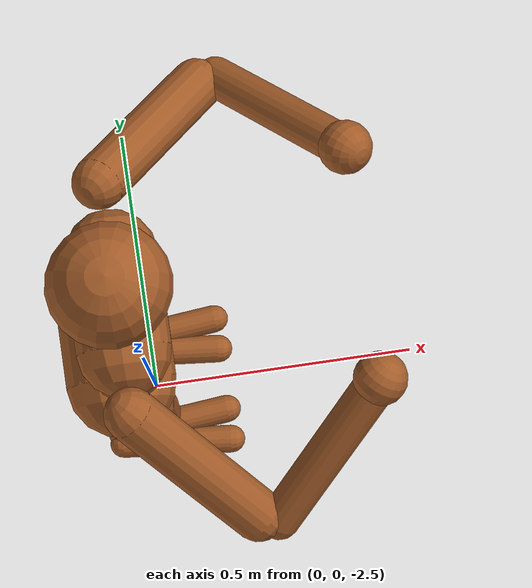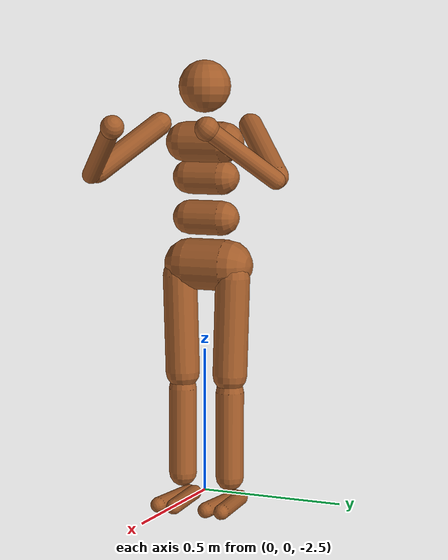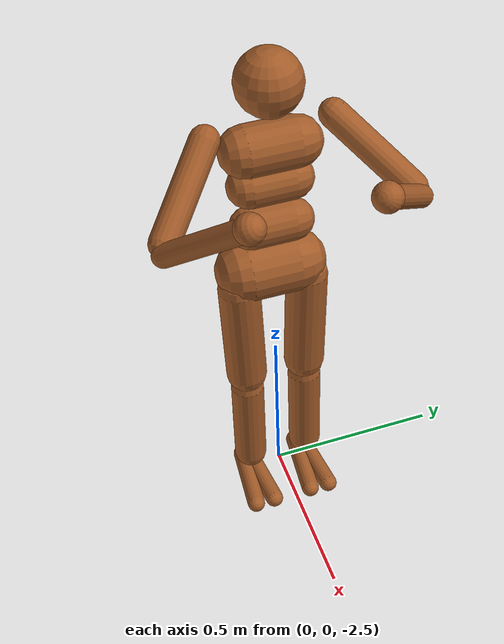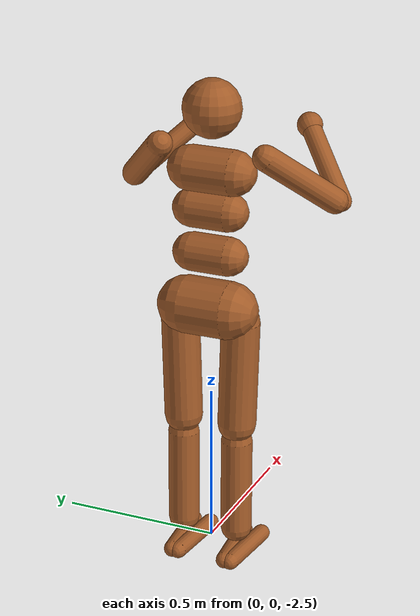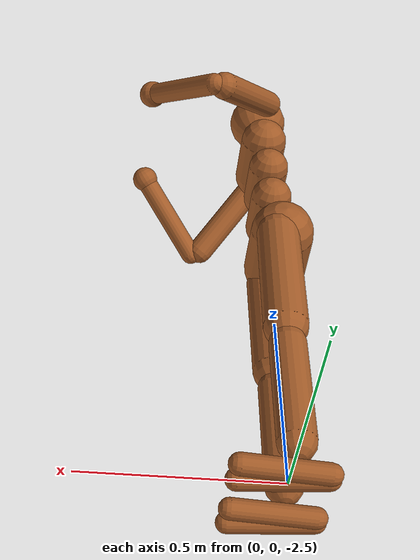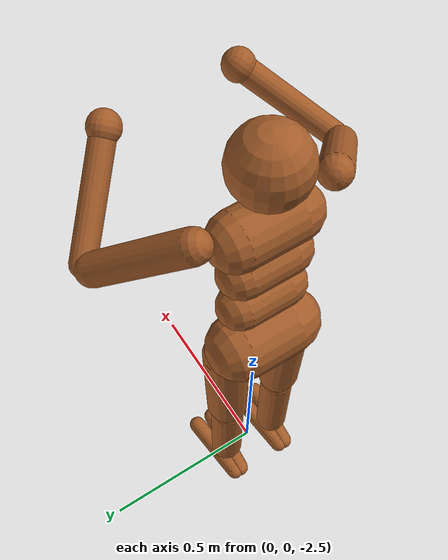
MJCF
<mujoco model="Humanoid">
    <option timestep="0.005" />

    <visual>
        <map force="0.1" zfar="30" />
        <rgba haze="0.15 0.25 0.35 1" />
        <global offwidth="2560" offheight="1440" elevation="-20" azimuth="120" />
    </visual>

    <statistic center="0 0 0.7" />

    <asset>
        <texture type="skybox" builtin="gradient" rgb1=".3 .5 .7" rgb2="0 0 0" width="32"
            height="512" />
        <texture name="body" type="cube" builtin="flat" mark="cross" width="128" height="128"
            rgb1="0.8 0.6 0.4" rgb2="0.8 0.6 0.4" markrgb="1 1 1" />
        <material name="body" texture="body" texuniform="true" rgba="0.8 0.6 .4 1" />
        <texture name="grid" type="2d" builtin="checker" width="512" height="512" rgb1=".1 .2 .3"
            rgb2=".2 .3 .4" />
        <material name="grid" texture="grid" texrepeat="1 1" texuniform="true" reflectance=".2" />
    </asset>

    <default>
        <motor ctrlrange="-2000 2000" ctrllimited="true" />
        <default class="body">

            <!-- geoms -->
            <geom type="capsule" condim="1" friction=".7" solimp=".9 .99 .003" solref=".015 1"
                material="body" group="1" />
            <default class="thigh">
                <geom size=".06" />
            </default>
            <default class="shin">
                <geom fromto="0 0 0 0 0 -.3" size=".049" />
            </default>
            <default class="foot">
                <geom size=".027" />
                <default class="foot1">
                    <geom fromto="-.07 -.01 0 .14 -.03 0" />
                </default>
                <default class="foot2">
                    <geom fromto="-.07 .01 0 .14  .03 0" />
                </default>
            </default>
            <default class="arm_upper">
                <geom size=".04" />
            </default>
            <default class="arm_lower">
                <geom size=".031" />
            </default>
            <default class="hand">
                <geom type="sphere" size=".04" />
            </default>

            <!-- joints -->
            <joint type="hinge" damping=".2" stiffness="1" armature=".01" limited="true"
                solimplimit="0 .99 .01" />
            <default class="joint_big">
                <joint damping="5" stiffness="10" />
                <default class="hip_x">
                    <joint range="-30 10" />
                </default>
                <default class="hip_z">
                    <joint range="-60 35" />
                </default>
                <default class="hip_y">
                    <joint axis="0 1 0" range="-150 20" />
                </default>
                <default class="joint_big_stiff">
                    <joint stiffness="20" />
                </default>
            </default>
            <default class="knee">
                <joint pos="0 0 .02" axis="0 -1 0" range="-160 2" />
            </default>
            <default class="ankle">
                <joint range="-50 50" />
                <default class="ankle_y">
                    <joint pos="0 0 .08" axis="0 1 0" stiffness="6" />
                </default>
                <default class="ankle_x">
                    <joint pos="0 0 .04" stiffness="3" />
                </default>
            </default>
            <default class="shoulder">
                <joint range="-85 60" />
            </default>
            <default class="elbow">
                <joint range="-100 50" stiffness="0" />
            </default>
        </default>
    </default>

    <worldbody>
        <body name="torso" pos="0 0 -1.282" childclass="body">
            <camera name="back" pos="-3 0 1" xyaxes="0 -1 0 1 0 2" mode="trackcom" />
            <camera name="side" pos="0 -3 1" xyaxes="1 0 0 0 1 2" mode="trackcom" />
            <freejoint name="root" />
            <site name="root" pos="0 0 0" />
            <geom name="torso" fromto="0 -.07 0 0 .07 0" size=".07" />
            <geom name="waist_upper" fromto="-.01 -.06 -.12 -.01 .06 -.12" size=".06" />
            <body name="head" pos="0 0 .19">
                <geom name="head" type="sphere" size=".09" />
                <camera name="egocentric" pos=".09 0 0" xyaxes="0 -1 0 .1 0 1" fovy="80" />
            </body>
            <body name="waist_lower" pos="-.01 0 -.26">
                <geom name="waist_lower" fromto="0 -.06 0 0 .06 0" size=".06" />
                <joint name="abdomen_z" pos="0 0 .065" axis="0 0 1" range="-45 45"
                    class="joint_big_stiff" />
                <joint name="abdomen_y" pos="0 0 .065" axis="0 1 0" range="-75 30" class="joint_big" />
                <body name="pelvis" pos="0 0 -.165">
                    <joint name="abdomen_x" pos="0 0 .1" axis="1 0 0" range="-35 35"
                        class="joint_big" />
                    <geom name="butt" fromto="-.02 -.07 0 -.02 .07 0" size=".09" />
                    <body name="thigh_right" pos="0 -.1 -.04">
                        <joint name="hip_x_right" axis="1 0 0" class="hip_x" />
                        <joint name="hip_z_right" axis="0 0 1" class="hip_z" />
                        <joint name="hip_y_right" class="hip_y" />
                        <geom name="thigh_right" fromto="0 0 0 0 .01 -.34" class="thigh" />
                        <body name="shin_right" pos="0 .01 -.4">
                            <joint name="knee_right" class="knee" />
                            <geom name="shin_right" class="shin" />
                            <body name="foot_right" pos="0 0 -.39">
                                <site name="right_foot" />
                                <joint name="ankle_y_right" class="ankle_y" />
                                <joint name="ankle_x_right" class="ankle_x" axis="1 0 .5" />
                                <geom name="foot1_right" class="foot1" />
                                <geom name="foot2_right" class="foot2" />
                            </body>
                        </body>
                    </body>
                    <body name="thigh_left" pos="0 .1 -.04">
                        <joint name="hip_x_left" axis="-1 0 0" class="hip_x" />
                        <joint name="hip_z_left" axis="0 0 -1" class="hip_z" />
                        <joint name="hip_y_left" class="hip_y" />
                        <geom name="thigh_left" fromto="0 0 0 0 -.01 -.34" class="thigh" />
                        <body name="shin_left" pos="0 -.01 -.4">
                            <joint name="knee_left" class="knee" />
                            <geom name="shin_left" fromto="0 0 0 0 0 -.3" class="shin" />
                            <body name="foot_left" pos="0 0 -.39">
                                <site name="left_foot" />
                                <joint name="ankle_y_left" class="ankle_y" />
                                <joint name="ankle_x_left" class="ankle_x" axis="-1 0 -.5" />
                                <geom name="foot1_left" class="foot1" />
                                <geom name="foot2_left" class="foot2" />
                            </body>
                        </body>
                    </body>
                </body>
            </body>
            <body name="upper_arm_right" pos="0 -.17 .06">
                <site name="right_arm_center" pos="0 0 0" size="0.005" rgba="1 0.3 0.3 1" group="2" />
                <joint name="shoulder1_right" axis="2 1 1" class="shoulder" />
                <joint name="shoulder2_right" axis="0 -1 1" class="shoulder" />
                <geom name="upper_arm_right" fromto="0 0 0 .16 -.16 -.16" class="arm_upper" />
                <body name="lower_arm_right" pos=".18 -.18 -.18">
                    <joint name="elbow_right" axis="0 -1 1" class="elbow" />
                    <geom name="lower_arm_right" fromto=".01 .01 .01 .17 .17 .17" class="arm_lower" />
                    <body name="hand_right" pos=".18 .18 .18">
                        <geom name="hand_right" zaxis="1 1 1" class="hand" />
                    </body>
                </body>
            </body>
            <body name="upper_arm_left" pos="0 .17 .06">
                <site name="left_arm_center" pos="0 0 0" size="0.005" rgba="1 0.3 0.3 1" group="2" />
                <joint name="shoulder1_left" axis="-2 1 -1" class="shoulder" />
                <joint name="shoulder2_left" axis="0 -1 -1" class="shoulder" />
                <geom name="upper_arm_left" fromto="0 0 0 .16 .16 -.16" class="arm_upper" />
                <body name="lower_arm_left" pos=".18 .18 -.18">
                    <joint name="elbow_left" axis="0 -1 -1" class="elbow" />
                    <geom name="lower_arm_left" fromto=".01 -.01 .01 .17 -.17 .17" class="arm_lower" />
                    <body name="hand_left" pos=".18 -.18 .18">
                        <geom name="hand_left" zaxis="1 -1 1" class="hand" />
                    </body>
                </body>
            </body>
        </body>
    </worldbody>

    <contact>
        <exclude body1="waist_lower" body2="thigh_right" />
        <exclude body1="waist_lower" body2="thigh_left" />
    </contact>

    <tendon>
        <fixed name="hamstring_right" limited="true" range="-0.3 2">
            <joint joint="hip_y_right" coef=".5" />
            <joint joint="knee_right" coef="-.5" />
        </fixed>
        <fixed name="hamstring_left" limited="true" range="-0.3 2">
            <joint joint="hip_y_left" coef=".5" />
            <joint joint="knee_left" coef="-.5" />
        </fixed>
    </tendon>

    <actuator>
        <motor name="abdomen_z" joint="abdomen_z" />
        <motor name="abdomen_y" joint="abdomen_y" />
        <motor name="abdomen_x" joint="abdomen_x" />
        <motor name="hip_x_right" joint="hip_x_right" />
        <motor name="hip_z_right" joint="hip_z_right" />
        <motor name="hip_y_right" joint="hip_y_right" />
        <motor name="knee_right" joint="knee_right" />
        <motor name="ankle_y_right" joint="ankle_y_right" />
        <motor name="ankle_x_right" joint="ankle_x_right" />
        <motor name="hip_x_left" joint="hip_x_left" />
        <motor name="hip_z_left" joint="hip_z_left" />
        <motor name="hip_y_left" joint="hip_y_left" />
        <motor name="knee_left" joint="knee_left" />
        <motor name="ankle_y_left" joint="ankle_y_left" />
        <motor name="ankle_x_left" joint="ankle_x_left" />
        <motor name="shoulder1_right" joint="shoulder1_right" />
        <motor name="shoulder2_right" joint="shoulder2_right" />
        <motor name="elbow_right" joint="elbow_right" />
        <motor name="shoulder1_left" joint="shoulder1_left" />
        <motor name="shoulder2_left" joint="shoulder2_left" />
        <motor name="elbow_left" joint="elbow_left" />
    </actuator>

    <keyframe>
        <!--
      The values below are split into rows for readibility:
        torso position
        torso orientation
        spinal
        right leg
        left leg
        arms
      -->
        <key name="squat"
            qpos="0 0 0.596
                 0.988015 0 0.154359 0
                 0 0.4 0
                 -0.25 -0.5 -2.5 -2.65 -0.8 0.56
                 -0.25 -0.5 -2.5 -2.65 -0.8 0.56
                 0 0 0 0 0 0" />
        <key name="stand_on_left_leg"
            qpos="0 0 1.21948
                 0.971588 -0.179973 0.135318 -0.0729076
                 -0.0516 -0.202 0.23
                 -0.24 -0.007 -0.34 -1.76 -0.466 -0.0415
                 -0.08 -0.01 -0.37 -0.685 -0.35 -0.09
                 0.109 -0.067 -0.7 -0.05 0.12 0.16" />
        <key name="prone"
            qpos="0.4 0 0.0757706
                 0.7325 0 0.680767 0
                 0 0.0729 0
                 0.0077 0.0019 -0.026 -0.351 -0.27 0
                 0.0077 0.0019 -0.026 -0.351 -0.27 0
                 0.56 -0.62 -1.752
                 0.56 -0.62 -1.752" />
        <key name="supine"
            qpos="-0.4 0 0.08122
                 0.722788 0 -0.69107 0
                 0 -0.25 0
                 0.0182 0.0142 0.3 0.042 -0.44 -0.02
                 0.0182 0.0142 0.3 0.042 -0.44 -0.02
                 0.186 -0.73 -1.73
                 0.186 -0.73 -1.73" />
    </keyframe>

    <sensor>
        <subtreelinvel name="torso_subtreelinvel" body="torso" />
        <accelerometer name="torso_accel" site="root" />
        <velocimeter name="torso_vel" site="root" />
        <gyro name="torso_gyro" site="root" />
        <framequat objtype="site" objname="root" name="torso_quat" />
        <framezaxis objtype="site" objname="root" name="upvector" />
        <framelinvel objtype="site" objname="root" name="global_linvel" />
    </sensor>

</mujoco>
